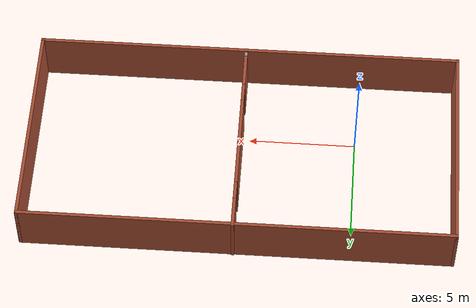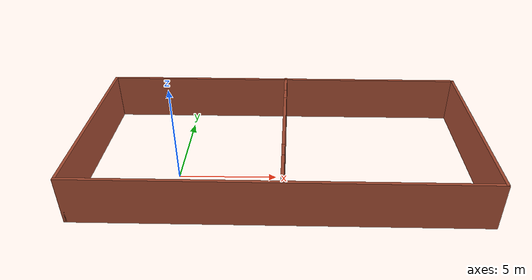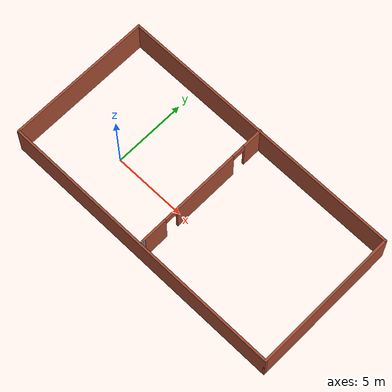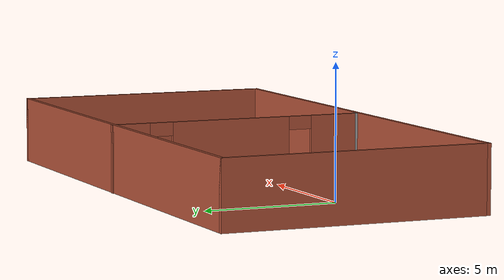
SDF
<?xml version='1.0'?>
<sdf version='1.6'>
  <model name='big_room_2_door'>
    <pose frame=''>5.2482 1.39715 0 0 -0 0</pose>
    <link name='Wall_0'>
      <collision name='Wall_0_Collision'>
        <geometry>
          <box>
            <size>20 0.15 2.5</size>
          </box>
        </geometry>
        <pose frame=''>0 0 1.25 0 -0 0</pose>
      </collision>
      <visual name='Wall_0_Visual'>
        <pose frame=''>0 0 1.25 0 -0 0</pose>
        <geometry>
          <box>
            <size>20 0.15 2.5</size>
          </box>
        </geometry>
        <material>
          <script>
            <uri>file://media/materials/scripts/gazebo.material</uri>
            <name>Gazebo/Bricks</name>
          </script>
          <ambient>1 1 1 1</ambient>
        </material>
        <meta>
          <layer>0</layer>
        </meta>
      </visual>
      <pose frame=''>0 -4.94555 0 0 -0 0</pose>
    </link>
    <link name='Wall_2'>
      <collision name='Wall_2_Collision'>
        <geometry>
          <box>
            <size>10 0.15 2.5</size>
          </box>
        </geometry>
        <pose frame=''>0 0 1.25 0 -0 0</pose>
      </collision>
      <visual name='Wall_2_Visual'>
        <pose frame=''>0 0 1.25 0 -0 0</pose>
        <geometry>
          <box>
            <size>10 0.15 2.5</size>
          </box>
        </geometry>
        <material>
          <script>
            <uri>file://media/materials/scripts/gazebo.material</uri>
            <name>Gazebo/Bricks</name>
          </script>
          <ambient>1 1 1 1</ambient>
        </material>
        <meta>
          <layer>0</layer>
        </meta>
      </visual>
      <pose frame=''>-9.925 -0.020549 0 0 -0 1.5708</pose>
    </link>
    <link name='Wall_3'>
      <collision name='Wall_3_Collision'>
        <geometry>
          <box>
            <size>20 0.15 2.5</size>
          </box>
        </geometry>
        <pose frame=''>0 0 1.25 0 -0 0</pose>
      </collision>
      <visual name='Wall_3_Visual'>
        <pose frame=''>0 0 1.25 0 -0 0</pose>
        <geometry>
          <box>
            <size>20 0.15 2.5</size>
          </box>
        </geometry>
        <material>
          <script>
            <uri>file://media/materials/scripts/gazebo.material</uri>
            <name>Gazebo/Bricks</name>
          </script>
          <ambient>1 1 1 1</ambient>
        </material>
        <meta>
          <layer>0</layer>
        </meta>
      </visual>
      <pose frame=''>0 4.90445 0 0 -0 0</pose>
    </link>
    <link name='Wall_4'>
      <collision name='Wall_4_Collision'>
        <geometry>
          <box>
            <size>10 0.15 2.5</size>
          </box>
        </geometry>
        <pose frame=''>0 0 1.25 0 -0 0</pose>
      </collision>
      <visual name='Wall_4_Visual'>
        <pose frame=''>0 0 1.25 0 -0 0</pose>
        <geometry>
          <box>
            <size>10 0.15 2.5</size>
          </box>
        </geometry>
        <material>
          <script>
            <uri>file://media/materials/scripts/gazebo.material</uri>
            <name>Gazebo/Bricks</name>
          </script>
          <ambient>1 1 1 1</ambient>
        </material>
        <meta>
          <layer>0</layer>
        </meta>
      </visual>
      <pose frame=''>9.925 -0.020549 0 0 -0 -1.5708</pose>
    </link>
    <link name='Wall_6'>
      <pose frame=''>0.140424 0.145549 0 0 -0 -1.5708</pose>
      <visual name='Wall_6_Visual_0'>
        <pose frame=''>-4.13727 0 1.25 0 -0 0</pose>
        <geometry>
          <box>
            <size>1.47547 0.15 2.5</size>
          </box>
        </geometry>
        <material>
          <script>
            <uri>file://media/materials/scripts/gazebo.material</uri>
            <name>Gazebo/Bricks</name>
          </script>
          <ambient>1 1 1 1</ambient>
        </material>
        <meta>
          <layer>0</layer>
        </meta>
      </visual>
      <collision name='Wall_6_Collision_0'>
        <geometry>
          <box>
            <size>1.47547 0.15 2.5</size>
          </box>
        </geometry>
        <pose frame=''>-4.13727 0 1.25 0 -0 0</pose>
      </collision>
      <visual name='Wall_6_Visual_1'>
        <pose frame=''>-0.174338 0 1.25 0 -0 0</pose>
        <geometry>
          <box>
            <size>4.65039 0.15 2.5</size>
          </box>
        </geometry>
        <material>
          <script>
            <uri>file://media/materials/scripts/gazebo.material</uri>
            <name>Gazebo/Bricks</name>
          </script>
          <ambient>1 1 1 1</ambient>
        </material>
        <meta>
          <layer>0</layer>
        </meta>
      </visual>
      <collision name='Wall_6_Collision_1'>
        <geometry>
          <box>
            <size>4.65039 0.15 2.5</size>
          </box>
        </geometry>
        <pose frame=''>-0.174338 0 1.25 0 -0 0</pose>
      </collision>
      <visual name='Wall_6_Visual_2'>
        <pose frame=''>3.96293 0 1.25 0 -0 0</pose>
        <geometry>
          <box>
            <size>1.82414 0.15 2.5</size>
          </box>
        </geometry>
        <material>
          <script>
            <uri>file://media/materials/scripts/gazebo.material</uri>
            <name>Gazebo/Bricks</name>
          </script>
          <ambient>1 1 1 1</ambient>
        </material>
        <meta>
          <layer>0</layer>
        </meta>
      </visual>
      <collision name='Wall_6_Collision_2'>
        <geometry>
          <box>
            <size>1.82414 0.15 2.5</size>
          </box>
        </geometry>
        <pose frame=''>3.96293 0 1.25 0 -0 0</pose>
      </collision>
      <visual name='Wall_6_Visual_3'>
        <pose frame=''>-2.94953 0 2.25 0 -0 0</pose>
        <geometry>
          <box>
            <size>0.9 0.15 0.5</size>
          </box>
        </geometry>
        <material>
          <script>
            <uri>file://media/materials/scripts/gazebo.material</uri>
            <name>Gazebo/Bricks</name>
          </script>
          <ambient>1 1 1 1</ambient>
        </material>
        <meta>
          <layer>0</layer>
        </meta>
      </visual>
      <collision name='Wall_6_Collision_3'>
        <geometry>
          <box>
            <size>0.9 0.15 0.5</size>
          </box>
        </geometry>
        <pose frame=''>-2.94953 0 2.25 0 -0 0</pose>
      </collision>
      <visual name='Wall_6_Visual_4'>
        <pose frame=''>2.60086 0 2.25 0 -0 0</pose>
        <geometry>
          <box>
            <size>0.9 0.15 0.5</size>
          </box>
        </geometry>
        <material>
          <script>
            <uri>file://media/materials/scripts/gazebo.material</uri>
            <name>Gazebo/Bricks</name>
          </script>
          <ambient>1 1 1 1</ambient>
        </material>
        <meta>
          <layer>0</layer>
        </meta>
      </visual>
      <collision name='Wall_6_Collision_4'>
        <geometry>
          <box>
            <size>0.9 0.15 0.5</size>
          </box>
        </geometry>
        <pose frame=''>2.60086 0 2.25 0 -0 0</pose>
      </collision>
    </link>
    <link name='Wall_7'>
      <collision name='Wall_7_Collision'>
        <geometry>
          <box>
            <size>0.15 0.15 2.5</size>
          </box>
        </geometry>
        <pose frame=''>0 0 1.25 0 -0 0</pose>
      </collision>
      <visual name='Wall_7_Visual'>
        <pose frame=''>0 0 1.25 0 -0 0</pose>
        <geometry>
          <box>
            <size>0.15 0.15 2.5</size>
          </box>
        </geometry>
        <material>
          <script>
            <uri>file://media/materials/scripts/gazebo.material</uri>
            <name>Gazebo/Grey</name>
          </script>
          <ambient>1 1 1 1</ambient>
        </material>
        <meta>
          <layer>0</layer>
        </meta>
      </visual>
      <pose frame=''>0.140424 -4.65445 0 0 -0 0</pose>
    </link>
    <link name='Wall_8'>
      <collision name='Wall_8_Collision'>
        <geometry>
          <box>
            <size>0.15 0.15 2.5</size>
          </box>
        </geometry>
        <pose frame=''>0 0 1.25 0 -0 0</pose>
      </collision>
      <visual name='Wall_8_Visual'>
        <pose frame=''>0 0 1.25 0 -0 0</pose>
        <geometry>
          <box>
            <size>0.15 0.15 2.5</size>
          </box>
        </geometry>
        <material>
          <script>
            <uri>file://media/materials/scripts/gazebo.material</uri>
            <name>Gazebo/Grey</name>
          </script>
          <ambient>1 1 1 1</ambient>
        </material>
        <meta>
          <layer>0</layer>
        </meta>
      </visual>
      <pose frame=''>0.140424 -4.65445 0 0 -0 0</pose>
    </link>
    <link name='Wall_9'>
      <collision name='Wall_9_Collision'>
        <geometry>
          <box>
            <size>0.25 0.15 2.5</size>
          </box>
        </geometry>
        <pose frame=''>0 0 1.25 0 -0 0</pose>
      </collision>
      <visual name='Wall_9_Visual'>
        <pose frame=''>0 0 1.25 0 -0 0</pose>
        <geometry>
          <box>
            <size>0.25 0.15 2.5</size>
          </box>
        </geometry>
        <material>
          <script>
            <uri>file://media/materials/scripts/gazebo.material</uri>
            <name>Gazebo/Grey</name>
          </script>
          <ambient>1 1 1 1</ambient>
        </material>
        <meta>
          <layer>0</layer>
        </meta>
      </visual>
      <pose frame=''>0.140424 -4.70445 0 0 -0 -1.5708</pose>
    </link>
    <static>1</static>
  </model>
</sdf>
